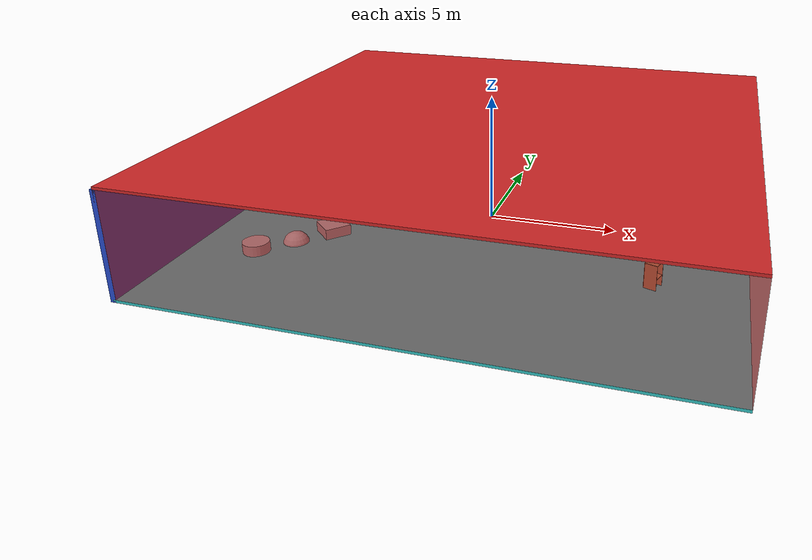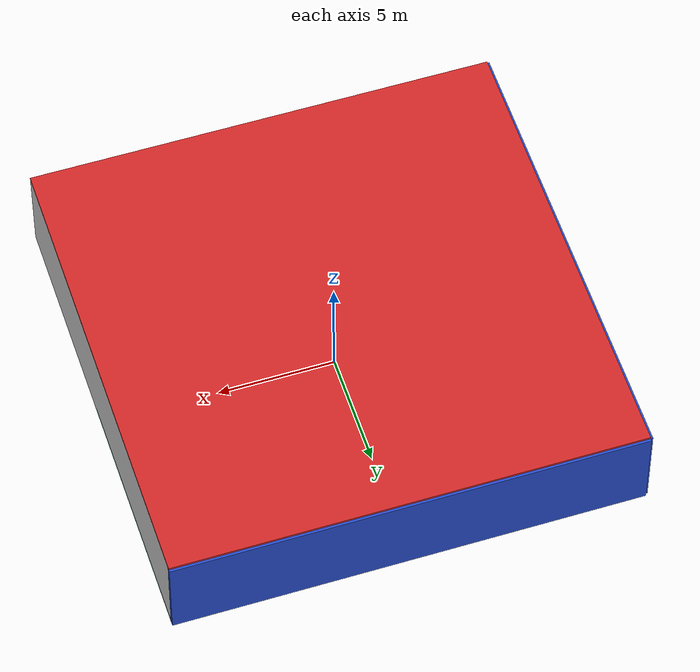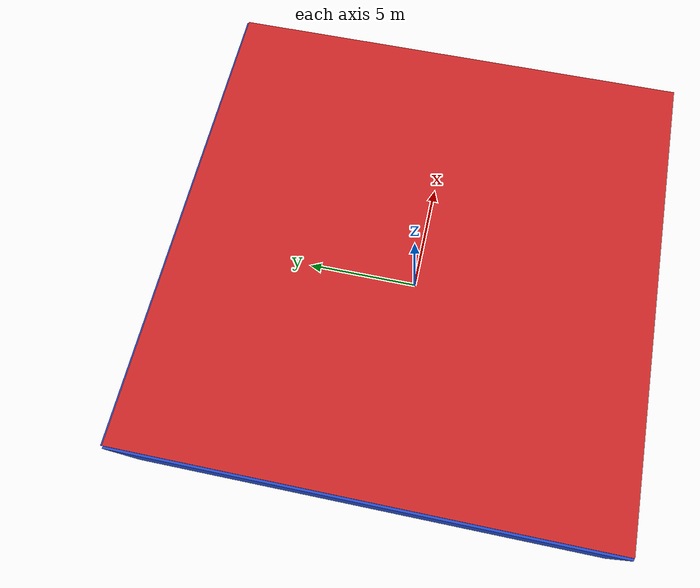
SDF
<sdf version="1.4">
 <world name="default">
  <physics type="ode">
   <max_step_size>0.001</max_step_size>
   <real_time_factor>1</real_time_factor>
   <real_time_update_rate>1000</real_time_update_rate>
   <gravity>0 0 -9.8</gravity>
  </physics>
  <scene><ambient>0.4 0.4 0.4 1</ambient><background>0.7 0.7 0.7 1</background><shadows>1</shadows></scene>
  <model name="Surrounding">
   <static>1</static>
   <link name="Ceiling">
    <collision name="Ceiling_Collision"><geometry><box><size>20 20 0.1</size></box></geometry></collision>
    <visual name="Ceiling_Visual">
     <geometry><box><size>20 20 0.1</size></box></geometry>
     <material>
      <script><uri>file://media/materials/scripts/gazebo.material</uri><name>Gazebo/RedBright</name></script>
     </material>
    </visual>
    <pose>0 0 4.05 0 0 0</pose>
   </link>
   <link name="Wall_South">
    <collision name="Wall_South_Collision">
     <geometry><box><size>20 0 4</size></box></geometry>
     <pose>0 0 2 0 -0 0</pose>
    </collision>
    <visual name="Wall_South_Visual">
     <pose>0 0 2 0 -0 0</pose>
     <geometry><box><size>20 0 4</size></box></geometry>
     <material>
      <script><uri>file://media/materials/scripts/gazebo.material</uri><name>Gazebo/RedTransparent</name></script>
     </material>
    </visual>
    <velocity_decay><linear>0</linear><angular>0</angular></velocity_decay>
    <pose>0 -10 0 0 -0 0</pose>
   </link>
   <link name="Wall_East">
    <collision name="Wall_21_Collision">
     <geometry><box><size>20 0 4</size></box></geometry>
     <pose>0 0 2 0 -0 0</pose>
    </collision>
    <visual name="Wall_21_Visual">
     <pose>0 0 2 0 -0 0</pose>
     <geometry><box><size>20 0 4</size></box></geometry>
     <material>
      <script><uri>file://media/materials/scripts/gazebo.material</uri><name>Gazebo/WhiteGlow</name></script>
     </material>
    </visual>
    <velocity_decay><linear>0</linear><angular>0</angular></velocity_decay>
    <pose>10 0 0 0 -0 1.5708</pose>
   </link>
   <link name="Wall_North">
    <collision name="Wall_22_Collision">
     <geometry><box><size>20 0.2 4</size></box></geometry>
     <pose>0 0 2 0 -0 0</pose>
    </collision>
    <visual name="Wall_22_Visual">
     <pose>0 0 2 0 -0 0</pose>
     <geometry><box><size>20 0.2 4</size></box></geometry>
     <material>
      <script><uri>file://media/materials/scripts/gazebo.material</uri><name>Gazebo/Blue</name></script>
     </material>
    </visual>
    <velocity_decay><linear>0</linear><angular>0</angular></velocity_decay>
    <pose>0 10 0 0 -0 0</pose>
   </link>
   <link name="Wall_West">
    <collision name="Wall_23_Collision">
     <geometry><box><size>20 0.2 4</size></box></geometry>
     <pose>0 0 2 0 -0 0</pose>
    </collision>
    <visual name="Wall_23_Visual">
     <pose>0 0 2 0 -0 0</pose>
     <geometry><box><size>20 0.2 4</size></box></geometry>
     <material>
      <script><uri>file://media/materials/scripts/gazebo.material</uri><name>Gazebo/Blue</name></script>
     </material>
    </visual>
    <velocity_decay><linear>0</linear><angular>0</angular></velocity_decay>
    <pose>-10 0 0 0 0 -1.5708</pose>
   </link>
   <link name="Ground_link">
    <collision name="collision">
     <pose>0 0 .05 0 -0 0</pose>
     <geometry><box><size>20 20 0.1</size></box></geometry>
    </collision>
    <visual name="visual">
     <pose>0 0 .05 0 -0 0</pose>
     <geometry><box><size>20 20 0.1</size></box></geometry>
     <material>
      <script><uri>file://media/materials/scripts/gazebo.material</uri><name>Gazebo/Turquoise</name></script>
     </material>
    </visual>
   </link>
   <static>1</static>
  </model>
  <spherical_coordinates>
   <surface_model>EARTH_WGS84</surface_model>
   <latitude_deg>0</latitude_deg>
   <longitude_deg>0</longitude_deg>
   <elevation>0</elevation>
   <heading_deg>0</heading_deg>
  </spherical_coordinates>
  <light name="lightball_0" type="diffuse">
   <diffuse>0.8 0.8 0.8 1</diffuse>
   <specular>0.2 0.2 0.2 1</specular>
   <attenuation>
    <range>100</range>
    <constant>0.7</constant>
    <linear>0.01</linear>
    <quadratic>0.001</quadratic>
   </attenuation>
   <direction>-0.5 0.1 -0.9</direction>
   <pose>3.65201361624 -6.48129211667 1.22179835114 0 0 0</pose>
  </light>
  <include>
   <uri>model://textured_shapes</uri>
   <pose>-6.39211347824 -4.46869542951 0 0 0 2.40598999745</pose>
  </include>
  <include><uri>model://table</uri><pose>-6.75938407695 8.26190309587 0 0 0 1.35432770951</pose></include>
  <include>
   <uri>model://textured_shapes</uri>
   <pose>-3.59992371625 7.79402857201 0 0 0 1.39146668075</pose>
  </include>
  <include><uri>model://cabinet</uri><pose>0.755195932779 6.88236912891 0 0 0 2.21579413098</pose></include>
  <include><uri>model://cabinet</uri><pose>6.84596823827 -4.1654614205 0 0 0 2.81235121543</pose></include>
  <include>
   <uri>model://construction_cone</uri>
   <pose>8.4676453206 1.83110786195 0 0 0 2.74359632462</pose>
  </include>
 </world>
</sdf>

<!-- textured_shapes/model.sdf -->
<sdf version="1.6">
  <model name="textured_shapes">
    <pose>0 0 0.5 0 0 0</pose>
    <link name="box">
      <pose>0 -1.5 0 0 0 0</pose>
      <collision name="collision">
        <geometry>
          <box>
            <size>1 1 1</size>
          </box>
        </geometry>
      </collision>
      <visual name="visual">
        <geometry>
          <box>
            <size>1 1 1</size>
          </box>
        </geometry>
        <material>
          <script>
            <uri>model://../model_source/models/textured_shapes/materials/scripts</uri>
            <uri>model://../model_source/models/textured_shapes/materials/textures</uri>
            <name>TexturedShape/Squares</name>
          </script>
        </material>
      </visual>
    </link>
    <link name="sphere">
      <collision name="collision">
        <geometry>
          <sphere>
            <radius>0.5</radius>
          </sphere>
        </geometry>
      </collision>
      <visual name="visual">
        <geometry>
          <sphere>
            <radius>0.5</radius>
          </sphere>
        </geometry>
        <material>
          <script>
            <uri>model://../model_source/models/textured_shapes/materials/scripts</uri>
            <uri>model://../model_source/models/textured_shapes/materials/textures</uri>
            <name>TexturedShape/Squares</name>
          </script>
        </material>
      </visual>
    </link>
    <link name="cylinder">
      <pose>0 1.5 0 0 0 0</pose>
      <collision name="collision">
        <geometry>
          <cylinder>
            <radius>0.5</radius>
            <length>1</length>
          </cylinder>
        </geometry>
      </collision>
      <visual name="visual">
        <geometry>
          <cylinder>
            <radius>0.5</radius>
            <length>1</length>
          </cylinder>
        </geometry>
        <material>
          <script>
            <uri>model://../model_source/models/textured_shapes/materials/scripts</uri>
            <uri>model://../model_source/models/textured_shapes/materials/textures</uri>
            <name>TexturedShape/Squares</name>
          </script>
        </material>
      </visual>
    </link>
  </model>
</sdf>

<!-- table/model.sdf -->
<sdf version="1.5">
  <model name="table">
    <static>true</static>
    <link name="link">
      <collision name="surface">
        <pose>0 0 1.0 0 0 0</pose>
        <geometry>
          <box>
            <size>1.5 0.8 0.03</size>
          </box>
        </geometry>
        <surface>
          <friction>
            <ode>
              <mu>0.6</mu>
              <mu2>0.6</mu2>
            </ode>
          </friction>
        </surface>
      </collision>
      <visual name="visual1">
        <pose>0 0 1.0 0 0 0</pose>
        <geometry>
          <box>
            <size>1.5 0.8 0.03</size>
          </box>
        </geometry>
        <material>
          <script>
            <uri>model://media/materials/scripts/gazebo.material</uri>
            <name>Gazebo/Wood</name>
          </script>
        </material>
      </visual>
      <collision name="front_left_leg">
        <pose>0.68 0.38 0.5 0 0 0</pose>
        <geometry>
          <cylinder>
            <radius>0.02</radius>
            <length>1.0</length>
          </cylinder>
        </geometry>
      </collision>
      <visual name="front_left_leg">
        <pose>0.68 0.38 0.5 0 0 0</pose>
        <geometry>
          <cylinder>
            <radius>0.02</radius>
            <length>1.0</length>
          </cylinder>
        </geometry>
        <material>
          <script>
            <uri>model://media/materials/scripts/gazebo.material</uri>
            <name>Gazebo/Grey</name>
          </script>
        </material>
      </visual>
      <collision name="front_right_leg">
        <pose>0.68 -0.38 0.5 0 0 0</pose>
        <geometry>
          <cylinder>
            <radius>0.02</radius>
            <length>1.0</length>
          </cylinder>
        </geometry>
      </collision>
      <visual name="front_right_leg">
        <pose>0.68 -0.38 0.5 0 0 0</pose>
        <geometry>
          <cylinder>
            <radius>0.02</radius>
            <length>1.0</length>
          </cylinder>
        </geometry>
        <material>
          <script>
            <uri>model://media/materials/scripts/gazebo.material</uri>
            <name>Gazebo/Grey</name>
          </script>
        </material>
      </visual>
      <collision name="back_right_leg">
        <pose>-0.68 -0.38 0.5 0 0 0</pose>
        <geometry>
          <cylinder>
            <radius>0.02</radius>
            <length>1.0</length>
          </cylinder>
        </geometry>
      </collision>
      <visual name="back_right_leg">
        <pose>-0.68 -0.38 0.5 0 0 0</pose>
        <geometry>
          <cylinder>
            <radius>0.02</radius>
            <length>1.0</length>
          </cylinder>
        </geometry>
        <material>
          <script>
            <uri>model://media/materials/scripts/gazebo.material</uri>
            <name>Gazebo/Grey</name>
          </script>
        </material>
      </visual>
      <collision name="back_left_leg">
        <pose>-0.68 0.38 0.5 0 0 0</pose>
        <geometry>
          <cylinder>
            <radius>0.02</radius>
            <length>1.0</length>
          </cylinder>
        </geometry>
      </collision>
      <visual name="back_left_leg">
        <pose>-0.68 0.38 0.5 0 0 0</pose>
        <geometry>
          <cylinder>
            <radius>0.02</radius>
            <length>1.0</length>
          </cylinder>
        </geometry>
        <material>
          <script>
            <uri>model://media/materials/scripts/gazebo.material</uri>
            <name>Gazebo/Grey</name>
          </script>
        </material>
      </visual>
    </link>
  </model>
</sdf>

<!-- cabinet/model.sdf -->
<sdf version="1.5">
  <model name="cabinet">
    <static>true</static>
    <link name="cabinet_bottom_plate">
      <inertial>
        <pose>0 0 -1 0 0 0</pose>
        <inertia>
          <ixx>2.050000</ixx>
          <ixy>0</ixy>
          <ixz>0</ixz>
          <iyy>2.050000</iyy>
          <iyz>0</iyz>
          <izz>2.050000</izz>
        </inertia>
        <mass>25.000000</mass>
      </inertial>
      <collision name="cabinet_bottom_plate_geom">
        <pose>0 0 0.010000 0 0 0</pose>
        <geometry>
          <box>
            <size>0.450000 0.450000 0.020000</size>
          </box>
        </geometry>
      </collision>
      <visual name="cabinet_bottom_plate_geom_visual">
        <pose>0 0 0.010000 0 0 0</pose>
        <geometry>
          <box>
            <size>0.450000 0.450000 0.020000</size>
          </box>
        </geometry>
        <material>
          <script>
            <uri>model://media/materials/scripts/gazebo.material</uri>
            <name>Gazebo/Wood</name>
          </script>
        </material>
      </visual>
      <collision name="cabinet_bottom_plate_geom_cabinet_back_plate">
        <pose>0.235000 0 0.510000 0 0 0</pose>
        <geometry>
          <box>
            <size>0.020000 0.450000 1.020000</size>
          </box>
        </geometry>
      </collision>
      <visual name="cabinet_bottom_plate_geom_cabinet_back_plate_visual">
        <pose>0.235000 0 0.510000 0 0 0</pose>
        <geometry>
          <box>
            <size>0.020000 0.450000 1.020000</size>
          </box>
        </geometry>
        <material>
          <script>
            <uri>model://media/materials/scripts/gazebo.material</uri>
            <name>Gazebo/Wood</name>
          </script>
        </material>
      </visual>
      <collision name="cabinet_bottom_plate_geom_cabinet_left_plate">
        <pose>0 0.235000 0.510000 0 0 0</pose>
        <geometry>
          <box>
            <size>0.450000 0.020000 1.020000</size>
          </box>
        </geometry>
      </collision>
      <visual name="cabinet_bottom_plate_geom_cabinet_left_plate_visual">
        <pose>0 0.235000 0.510000 0 0 0</pose>
        <geometry>
          <box>
            <size>0.450000 0.020000 1.020000</size>
          </box>
        </geometry>
        <material>
          <script>
            <uri>model://media/materials/scripts/gazebo.material</uri>
            <name>Gazebo/Wood</name>
          </script>
        </material>
      </visual>
      <collision name="cabinet_bottom_plate_geom_cabinet_middle_plate">
        <pose>0 0 0.510000 0 0 0</pose>
        <geometry>
          <box>
            <size>0.450000 0.450000 0.020000</size>
          </box>
        </geometry>
      </collision>
      <visual name="cabinet_bottom_plate_geom_cabinet_middle_plate_visual">
        <pose>0 0 0.510000 0 0 0</pose>
        <geometry>
          <box>
            <size>0.450000 0.450000 0.020000</size>
          </box>
        </geometry>
        <material>
          <script>
            <uri>model://media/materials/scripts/gazebo.material</uri>
            <name>Gazebo/Wood</name>
          </script>
        </material>
      </visual>
      <collision name="cabinet_bottom_plate_geom_cabinet_right_plate">
        <pose>0 -0.235000 0.510000 0 0 0</pose>
        <geometry>
          <box>
            <size>0.450000 0.020000 1.020000</size>
          </box>
        </geometry>
      </collision>
      <visual name="cabinet_bottom_plate_geom_cabinet_right_plate_visual">
        <pose>0 -0.235000 0.510000 0 0 0</pose>
        <geometry>
          <box>
            <size>0.450000 0.020000 1.020000</size>
          </box>
        </geometry>
        <material>
          <script>
            <uri>model://media/materials/scripts/gazebo.material</uri>
            <name>Gazebo/Wood</name>
          </script>
        </material>
      </visual>
      <collision name="cabinet_bottom_plate_geom_cabinet_top_plate">
        <pose>0 0 1.010000 0 0 0</pose>
        <geometry>
          <box>
            <size>0.450000 0.450000 0.020000</size>
          </box>
        </geometry>
      </collision>
      <visual name="cabinet_bottom_plate_geom_cabinet_top_plate_visual">
        <pose>0 0 1.010000 0 0 0</pose>
        <geometry>
          <box>
            <size>0.450000 0.450000 0.020000</size>
          </box>
        </geometry>
        <material>
          <script>
            <uri>model://media/materials/scripts/gazebo.material</uri>
            <name>Gazebo/Wood</name>
          </script>
        </material>
      </visual>
    </link>
  </model>
</sdf>

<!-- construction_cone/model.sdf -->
<sdf version="1.5">
  <model name="Construction Cone">
    <link name="link">
      <collision name="collision">
        <geometry>
          <mesh>
            <scale>10 10 10</scale>
            <uri>file://isr-testbed/construction_cone/meshes/construction_cone.dae</uri>
          </mesh>
        </geometry>
      </collision>
      <visual name="visual">
        <geometry>
          <mesh>
            <scale>10 10 10</scale>
            <uri>file://isr-testbed/construction_cone/meshes/construction_cone.dae</uri>
          </mesh>
        </geometry>
      </visual>
    </link>
  </model>
</sdf>
